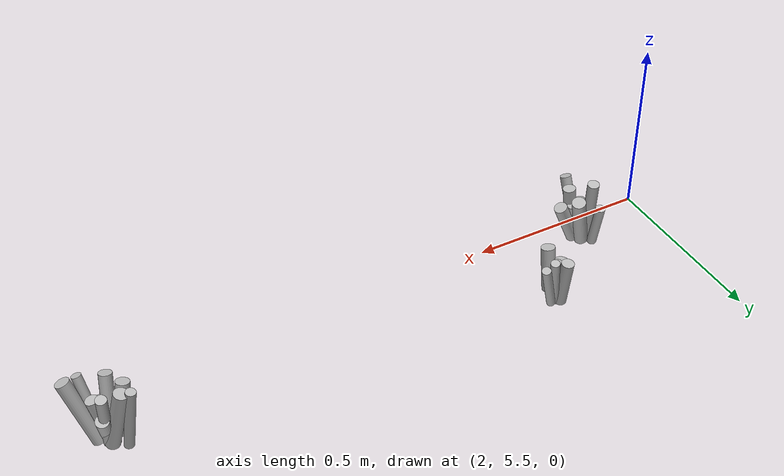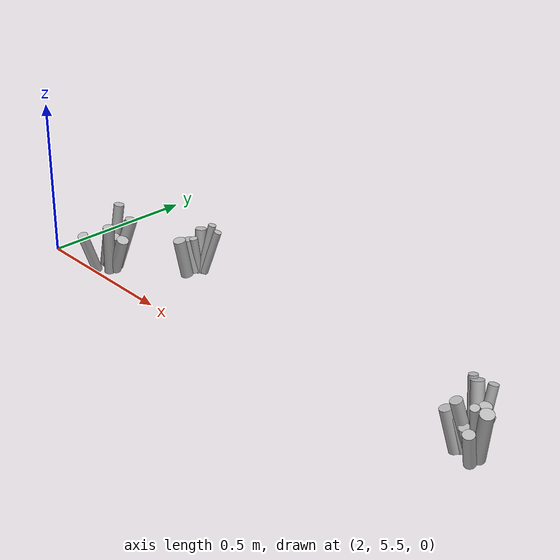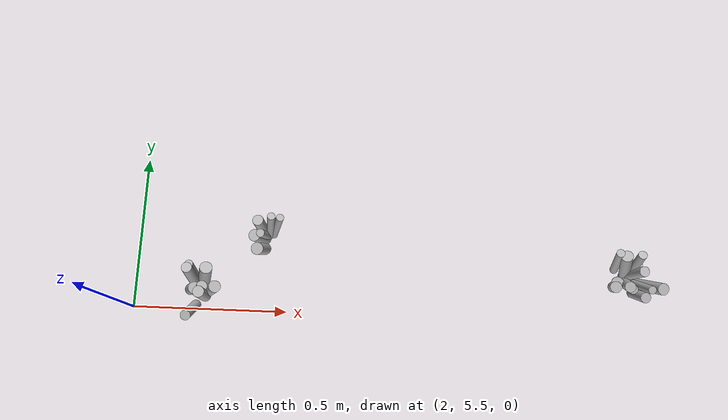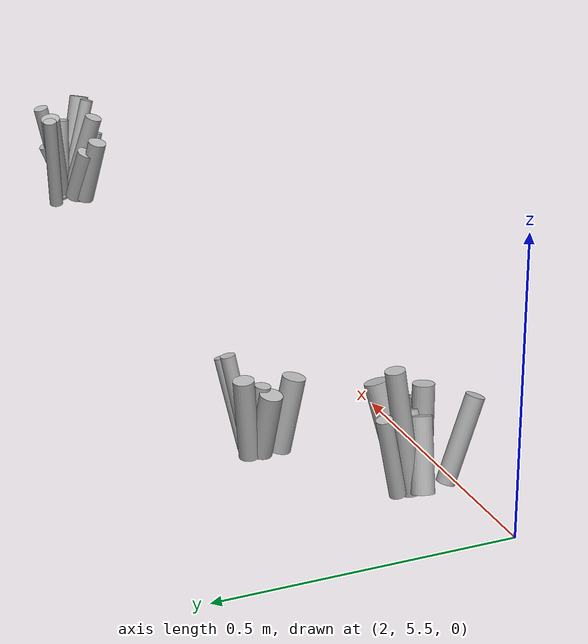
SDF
<sdf version="1.6">
 <world name="default">
  <model name="tussocks">
   <static>true</static>
   <link name="tuft6_1">
    <pose>2.2621 5.5587 0.0601 0 0.3887 6.2668</pose>
    <visual name="tuft6_1_v">
     <geometry><cylinder><radius>0.0189</radius><length>0.1306</length></cylinder></geometry>
     <material>
      <script>
       <uri>model://bushfire/materials/scripts</uri>
       <uri>model://bushfire/materials/textures</uri>
       <name>Bushfire/Foliage2</name>
      </script>
     </material>
    </visual>
   </link>
   <link name="tuft6_4">
    <pose>2.2380 5.5399 0.0754 0 0.1128 5.8265</pose>
    <visual name="tuft6_4_v">
     <geometry><cylinder><radius>0.0179</radius><length>0.1638</length></cylinder></geometry>
     <material>
      <script>
       <uri>model://bushfire/materials/scripts</uri>
       <uri>model://bushfire/materials/textures</uri>
       <name>Bushfire/Tussock</name>
      </script>
     </material>
    </visual>
   </link>
   <link name="tuft6_5">
    <pose>2.2097 5.5878 0.0985 0 0.1444 1.1570</pose>
    <visual name="tuft6_5_v">
     <geometry><cylinder><radius>0.0163</radius><length>0.2141</length></cylinder></geometry>
     <material>
      <script>
       <uri>model://bushfire/materials/scripts</uri>
       <uri>model://bushfire/materials/textures</uri>
       <name>Bushfire/Tussock</name>
      </script>
     </material>
    </visual>
   </link>
   <link name="tuft6_6">
    <pose>2.2056 5.4889 0.0688 0 0.3502 4.8282</pose>
    <visual name="tuft6_6_v">
     <geometry><cylinder><radius>0.0160</radius><length>0.1496</length></cylinder></geometry>
     <material>
      <script>
       <uri>model://bushfire/materials/scripts</uri>
       <uri>model://bushfire/materials/textures</uri>
       <name>Bushfire/Foliage2</name>
      </script>
     </material>
    </visual>
   </link>
   <link name="tuft6_7">
    <pose>2.2436 5.5937 0.0813 0 0.3140 0.6333</pose>
    <visual name="tuft6_7_v">
     <geometry><cylinder><radius>0.0194</radius><length>0.1768</length></cylinder></geometry>
     <material>
      <script>
       <uri>model://bushfire/materials/scripts</uri>
       <uri>model://bushfire/materials/textures</uri>
       <name>Bushfire/Tussock</name>
      </script>
     </material>
    </visual>
   </link>
   <link name="tuft6_9">
    <pose>2.2232 5.5596 0.0580 0 0.3688 6.2753</pose>
    <visual name="tuft6_9_v">
     <geometry><cylinder><radius>0.0166</radius><length>0.1261</length></cylinder></geometry>
     <material>
      <script>
       <uri>model://bushfire/materials/scripts</uri>
       <uri>model://bushfire/materials/textures</uri>
       <name>Bushfire/Foliage2</name>
      </script>
     </material>
    </visual>
   </link>
   <link name="tuft6_10">
    <pose>2.2019 5.5584 0.0569 0 0.3472 5.9950</pose>
    <visual name="tuft6_10_v">
     <geometry><cylinder><radius>0.0191</radius><length>0.1236</length></cylinder></geometry>
     <material>
      <script>
       <uri>model://bushfire/materials/scripts</uri>
       <uri>model://bushfire/materials/textures</uri>
       <name>Bushfire/Foliage2</name>
      </script>
     </material>
    </visual>
   </link>
   <link name="tuft6_11">
    <pose>2.2006 5.6123 0.0635 0 0.1905 1.5091</pose>
    <visual name="tuft6_11_v">
     <geometry><cylinder><radius>0.0136</radius><length>0.1380</length></cylinder></geometry>
     <material>
      <script>
       <uri>model://bushfire/materials/scripts</uri>
       <uri>model://bushfire/materials/textures</uri>
       <name>Bushfire/Foliage2</name>
      </script>
     </material>
    </visual>
   </link>
   <link name="tuft148_0">
    <pose>2.4128 5.6961 0.0598 0 0.1918 4.5625</pose>
    <visual name="tuft148_0_v">
     <geometry><cylinder><radius>0.0195</radius><length>0.1299</length></cylinder></geometry>
     <material>
      <script>
       <uri>model://bushfire/materials/scripts</uri>
       <uri>model://bushfire/materials/textures</uri>
       <name>Bushfire/Tussock</name>
      </script>
     </material>
    </visual>
   </link>
   <link name="tuft148_2">
    <pose>2.4048 5.7356 0.0516 0 0.1857 3.6981</pose>
    <visual name="tuft148_2_v">
     <geometry><cylinder><radius>0.0192</radius><length>0.1121</length></cylinder></geometry>
     <material>
      <script>
       <uri>model://bushfire/materials/scripts</uri>
       <uri>model://bushfire/materials/textures</uri>
       <name>Bushfire/Foliage2</name>
      </script>
     </material>
    </visual>
   </link>
   <link name="tuft148_3">
    <pose>2.4113 5.7667 0.0646 0 0.1043 1.9641</pose>
    <visual name="tuft148_3_v">
     <geometry><cylinder><radius>0.0174</radius><length>0.1405</length></cylinder></geometry>
     <material>
      <script>
       <uri>model://bushfire/materials/scripts</uri>
       <uri>model://bushfire/materials/textures</uri>
       <name>Bushfire/Tussock</name>
      </script>
     </material>
    </visual>
   </link>
   <link name="tuft148_4">
    <pose>2.4415 5.7676 0.0778 0 0.2256 0.8113</pose>
    <visual name="tuft148_4_v">
     <geometry><cylinder><radius>0.0124</radius><length>0.1691</length></cylinder></geometry>
     <material>
      <script>
       <uri>model://bushfire/materials/scripts</uri>
       <uri>model://bushfire/materials/textures</uri>
       <name>Bushfire/Tussock</name>
      </script>
     </material>
    </visual>
   </link>
   <link name="tuft148_5">
    <pose>2.4603 5.7691 0.0716 0 0.3066 0.5384</pose>
    <visual name="tuft148_5_v">
     <geometry><cylinder><radius>0.0123</radius><length>0.1556</length></cylinder></geometry>
     <material>
      <script>
       <uri>model://bushfire/materials/scripts</uri>
       <uri>model://bushfire/materials/textures</uri>
       <name>Bushfire/Tussock</name>
      </script>
     </material>
    </visual>
   </link>
   <link name="tuft148_8">
    <pose>2.4194 5.7433 0.0553 0 0.1294 4.2760</pose>
    <visual name="tuft148_8_v">
     <geometry><cylinder><radius>0.0132</radius><length>0.1202</length></cylinder></geometry>
     <material>
      <script>
       <uri>model://bushfire/materials/scripts</uri>
       <uri>model://bushfire/materials/textures</uri>
       <name>Bushfire/Foliage2</name>
      </script>
     </material>
    </visual>
   </link>
   <link name="tuft175_0">
    <pose>3.6343 5.5899 0.0526 0 0.3004 5.0420</pose>
    <visual name="tuft175_0_v">
     <geometry><cylinder><radius>0.0166</radius><length>0.1144</length></cylinder></geometry>
     <material>
      <script>
       <uri>model://bushfire/materials/scripts</uri>
       <uri>model://bushfire/materials/textures</uri>
       <name>Bushfire/Foliage2</name>
      </script>
     </material>
    </visual>
   </link>
   <link name="tuft175_1">
    <pose>3.5858 5.6755 0.0861 0 0.2751 2.4940</pose>
    <visual name="tuft175_1_v">
     <geometry><cylinder><radius>0.0183</radius><length>0.1872</length></cylinder></geometry>
     <material>
      <script>
       <uri>model://bushfire/materials/scripts</uri>
       <uri>model://bushfire/materials/textures</uri>
       <name>Bushfire/Tussock</name>
      </script>
     </material>
    </visual>
   </link>
   <link name="tuft175_2">
    <pose>3.5565 5.6126 0.0595 0 0.2618 3.8067</pose>
    <visual name="tuft175_2_v">
     <geometry><cylinder><radius>0.0179</radius><length>0.1293</length></cylinder></geometry>
     <material>
      <script>
       <uri>model://bushfire/materials/scripts</uri>
       <uri>model://bushfire/materials/textures</uri>
       <name>Bushfire/Tussock</name>
      </script>
     </material>
    </visual>
   </link>
   <link name="tuft175_3">
    <pose>3.6278 5.6157 0.0873 0 0.3173 5.0917</pose>
    <visual name="tuft175_3_v">
     <geometry><cylinder><radius>0.0125</radius><length>0.1899</length></cylinder></geometry>
     <material>
      <script>
       <uri>model://bushfire/materials/scripts</uri>
       <uri>model://bushfire/materials/textures</uri>
       <name>Bushfire/Foliage2</name>
      </script>
     </material>
    </visual>
   </link>
   <link name="tuft175_4">
    <pose>3.6138 5.6551 0.0715 0 0.1772 5.9053</pose>
    <visual name="tuft175_4_v">
     <geometry><cylinder><radius>0.0164</radius><length>0.1553</length></cylinder></geometry>
     <material>
      <script>
       <uri>model://bushfire/materials/scripts</uri>
       <uri>model://bushfire/materials/textures</uri>
       <name>Bushfire/Foliage2</name>
      </script>
     </material>
    </visual>
   </link>
   <link name="tuft175_5">
    <pose>3.5892 5.6190 0.0800 0 0.2977 4.1639</pose>
    <visual name="tuft175_5_v">
     <geometry><cylinder><radius>0.0168</radius><length>0.1739</length></cylinder></geometry>
     <material>
      <script>
       <uri>model://bushfire/materials/scripts</uri>
       <uri>model://bushfire/materials/textures</uri>
       <name>Bushfire/Tussock</name>
      </script>
     </material>
    </visual>
   </link>
   <link name="tuft175_6">
    <pose>3.6071 5.6180 0.0481 0 0.3443 4.5909</pose>
    <visual name="tuft175_6_v">
     <geometry><cylinder><radius>0.0150</radius><length>0.1045</length></cylinder></geometry>
     <material>
      <script>
       <uri>model://bushfire/materials/scripts</uri>
       <uri>model://bushfire/materials/textures</uri>
       <name>Bushfire/Foliage2</name>
      </script>
     </material>
    </visual>
   </link>
   <link name="tuft175_7">
    <pose>3.5592 5.6899 0.0865 0 0.1799 2.5667</pose>
    <visual name="tuft175_7_v">
     <geometry><cylinder><radius>0.0130</radius><length>0.1881</length></cylinder></geometry>
     <material>
      <script>
       <uri>model://bushfire/materials/scripts</uri>
       <uri>model://bushfire/materials/textures</uri>
       <name>Bushfire/Tussock</name>
      </script>
     </material>
    </visual>
   </link>
   <link name="tuft175_8">
    <pose>3.6116 5.6730 0.0893 0 0.2276 1.5764</pose>
    <visual name="tuft175_8_v">
     <geometry><cylinder><radius>0.0138</radius><length>0.1940</length></cylinder></geometry>
     <material>
      <script>
       <uri>model://bushfire/materials/scripts</uri>
       <uri>model://bushfire/materials/textures</uri>
       <name>Bushfire/Foliage2</name>
      </script>
     </material>
    </visual>
   </link>
   <link name="tuft175_9">
    <pose>3.5693 5.6286 0.0488 0 0.3212 3.7138</pose>
    <visual name="tuft175_9_v">
     <geometry><cylinder><radius>0.0193</radius><length>0.1061</length></cylinder></geometry>
     <material>
      <script>
       <uri>model://bushfire/materials/scripts</uri>
       <uri>model://bushfire/materials/textures</uri>
       <name>Bushfire/Tussock</name>
      </script>
     </material>
    </visual>
   </link>
   <link name="tuft175_10">
    <pose>3.6130 5.6605 0.0512 0 0.3946 1.2978</pose>
    <visual name="tuft175_10_v">
     <geometry><cylinder><radius>0.0171</radius><length>0.1113</length></cylinder></geometry>
     <material>
      <script>
       <uri>model://bushfire/materials/scripts</uri>
       <uri>model://bushfire/materials/textures</uri>
       <name>Bushfire/Foliage2</name>
      </script>
     </material>
    </visual>
   </link>
   <link name="tuft175_11">
    <pose>3.6513 5.6147 0.0865 0 0.3398 5.4774</pose>
    <visual name="tuft175_11_v">
     <geometry><cylinder><radius>0.0186</radius><length>0.1879</length></cylinder></geometry>
     <material>
      <script>
       <uri>model://bushfire/materials/scripts</uri>
       <uri>model://bushfire/materials/textures</uri>
       <name>Bushfire/Tussock</name>
      </script>
     </material>
    </visual>
   </link>
  </model>
 </world>
</sdf>
